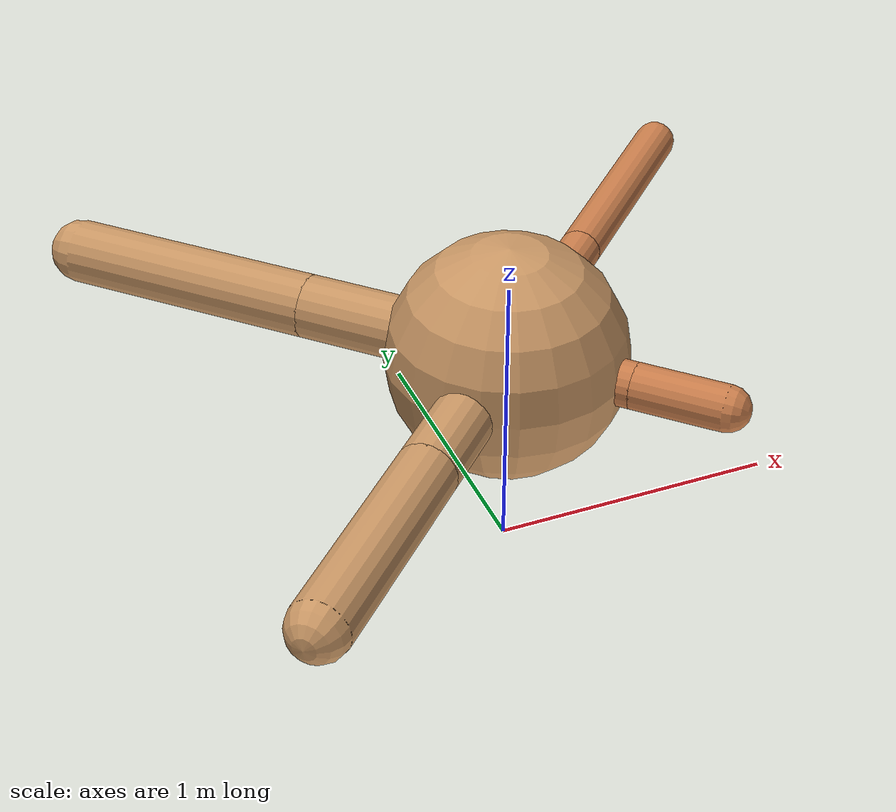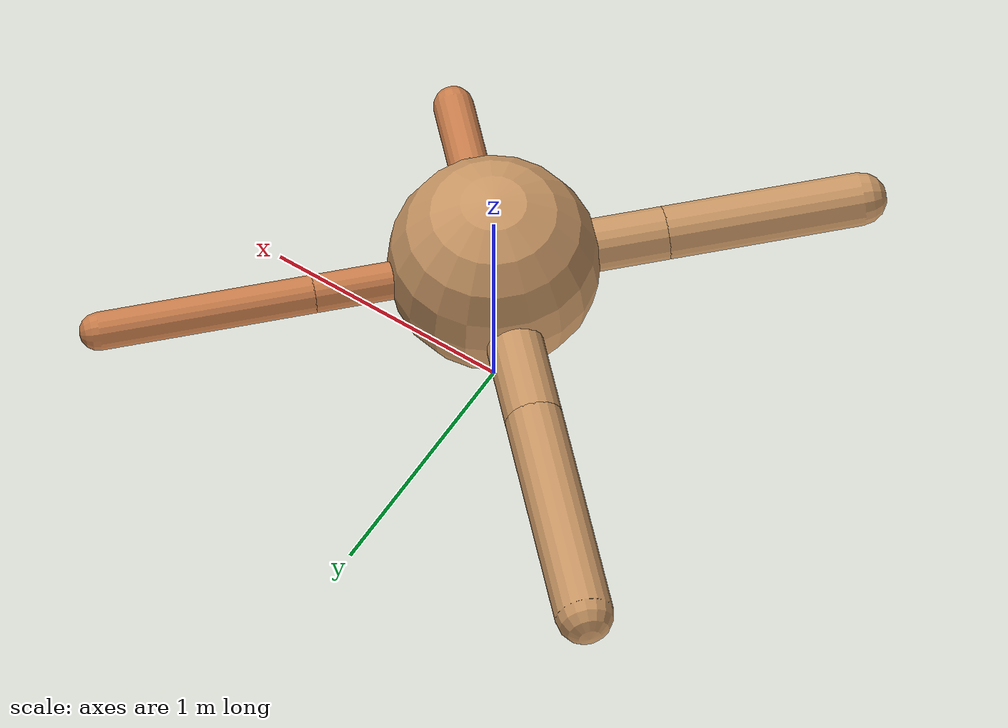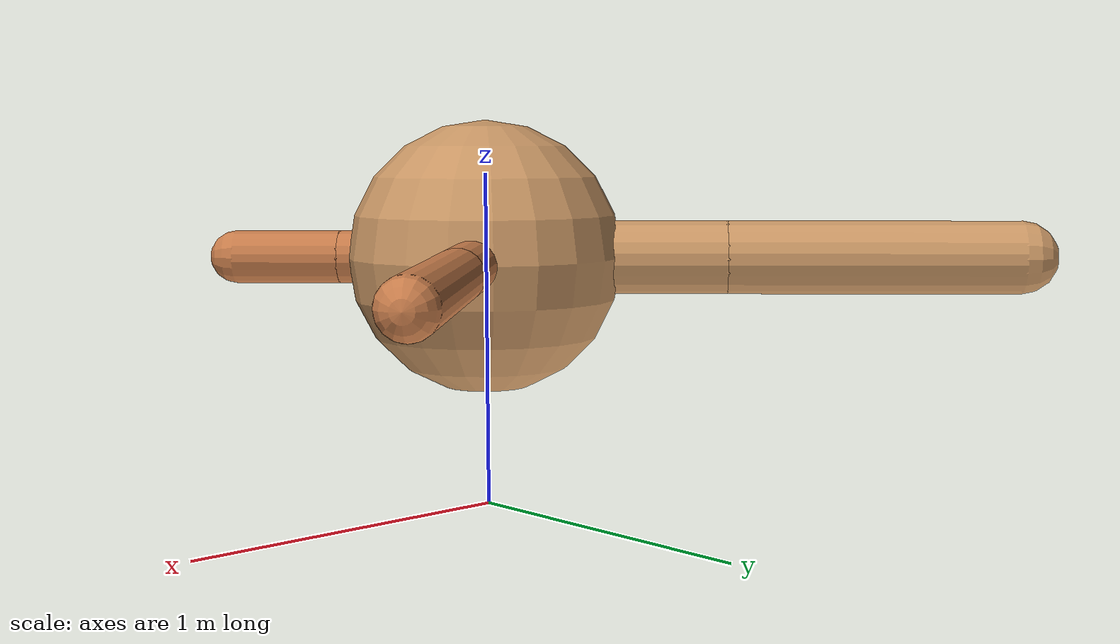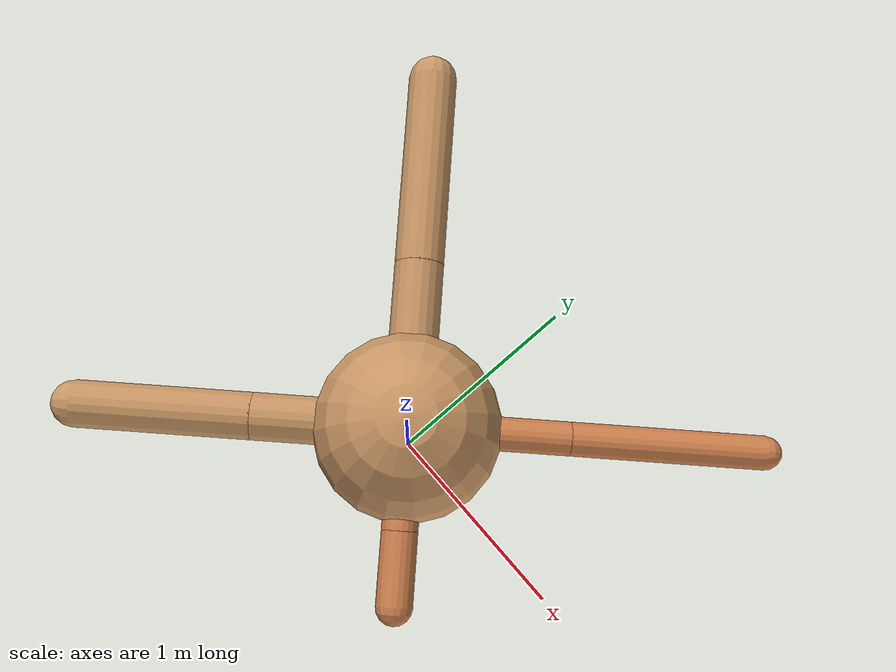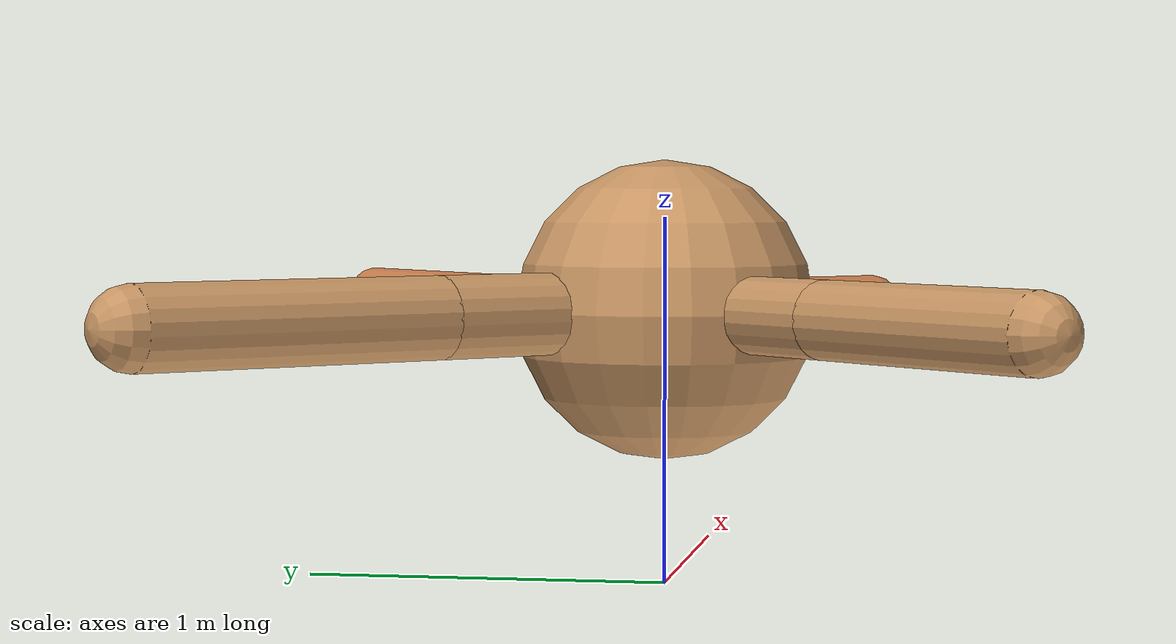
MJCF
<?xml version="1.0" ?>
<mujoco model="ant">

	<compiler angle="degree" coordinate="local" inertiafromgeom="true"/>

	<option integrator="RK4" timestep="0.01"/>

	<custom>

		<numeric data="0.0 0.0 0.55 1.0 0.0 0.0 0.0 0.0 1.0 0.0 -1.0 0.0 -1.0 0.0 1.0" name="init_qpos"/>

	</custom>

	<default>

		<joint armature="1" damping="1" limited="true"/>

		<geom conaffinity="0" condim="3" density="5.0" friction="1.5 0.1 0.1" margin="0.01" rgba="0.8 0.6 0.4 1"/>

	</default>

	<worldbody>

		<body name="torso" pos="0 0 0.75">

			<geom name="torso_geom" pos="0 0 0" size="0.4077205416676448" type="sphere"/>

			<!--joint armature="0" damping="0" limited="false" margin="0.01" name="root" pos="0 0 0" type="free"/-->

			<body name="front_left_leg" pos="0 0 0">

				<geom fromto="0 0 0 0.2 0.2 0" name="aux_1_geom" size="0.07309009450583022" type="capsule" rgba=".8 .5 .3 1"/>

				<body name="aux_1" pos="0.2 0.2 0">

					<joint axis="0 0 1" name="hip_1" pos="0.0 0.0 0.0" range="-40 40" type="hinge"/>

					<geom fromto="0 0 0 0.2914391622375753 0.2914391622375753 0" name="left_leg_geom" size="0.07309009450583022" type="capsule" rgba=".8 .5 .3 1"/>

					<body pos="0.2914391622375753 0.2914391622375753 0" name="front_left_foot">

						<joint axis="-1 1 0" name="ankle_1" pos="0.0 0.0 0.0" range="30 100" type="hinge"/>

						<geom fromto="0 0 0 0.5828783244751506 0.5828783244751506 0" name="left_ankle_geom" size="0.07309009450583022" type="capsule" rgba=".8 .5 .3 1"/>

					</body>

				</body>

			</body>

			<body name="front_right_leg" pos="0 0 0">

				<geom fromto="0 0 0 -0.2 0.2 0" name="aux_2_geom" size="0.10948392804807597" type="capsule"/>

				<body name="aux_2" pos="-0.2 0.2 0">

					<joint axis="0 0 1" name="hip_2" pos="0.0 0.0 0.0" range="-40 40" type="hinge"/>

					<geom fromto="0 0 0 -0.30977365067763984 0.30977365067763984 0" name="right_leg_geom" size="0.10948392804807597" type="capsule"/>

					<body pos="-0.30977365067763984 0.30977365067763984 0" name="front_right_foot">

						<joint axis="1 1 0" name="ankle_2" pos="0.0 0.0 0.0" range="-100 -30" type="hinge"/>

						<geom fromto="0 0 0 -0.6195473013552797 0.6195473013552797 0" name="right_ankle_geom" size="0.10948392804807597" type="capsule"/>

					</body>

				</body>

			</body>

			<body name="left_back_leg" pos="0 0 0">

				<geom fromto="0 0 0 -0.2 -0.2 0" name="aux_3_geom" size="0.10273031364462705" type="capsule"/>

				<body name="aux_3" pos="-0.2 -0.2 0">

					<joint axis="0 0 1" name="hip_3" pos="0.0 0.0 0.0" range="-40 40" type="hinge"/>

					<geom fromto="0 0 0 -0.26985898406422043 -0.26985898406422043 0" name="back_leg_geom" size="0.10273031364462705" type="capsule"/>

					<body pos="-0.26985898406422043 -0.26985898406422043 0" name="left_back_foot">

						<joint axis="-1 1 0" name="ankle_3" pos="0.0 0.0 0.0" range="-100 -30" type="hinge"/>

						<geom fromto="0 0 0 -0.5397179681284409 -0.5397179681284409 0" name="third_ankle_geom" size="0.10273031364462705" type="capsule"/>

					</body>

				</body>

			</body>

			<body name="right_back_leg" pos="0 0 0">

				<geom fromto="0 0 0 0.2 -0.2 0" name="aux_4_geom" size="0.07854646495086087" type="capsule" rgba=".8 .5 .3 1"/>

				<body name="aux_4" pos="0.2 -0.2 0">

					<joint axis="0 0 1" name="hip_4" pos="0.0 0.0 0.0" range="-40 40" type="hinge"/>

					<geom fromto="0 0 0 0.10952312205540826 -0.10952312205540826 0" name="rightback_leg_geom" size="0.07854646495086087" type="capsule" rgba=".8 .5 .3 1"/>

					<body pos="0.10952312205540826 -0.10952312205540826 0" name="right_back_foot">

						<joint axis="1 1 0" name="ankle_4" pos="0.0 0.0 0.0" range="30 100" type="hinge"/>

						<geom fromto="0 0 0 0.21904624411081652 -0.21904624411081652 0" name="fourth_ankle_geom" size="0.07854646495086087" type="capsule" rgba=".8 .5 .3 1"/>

					</body>

				</body>

			</body>

		</body>

	</worldbody>

	<actuator>

		<motor ctrllimited="true" ctrlrange="-1.0 1.0" joint="hip_4" gear="150"/>

		<motor ctrllimited="true" ctrlrange="-1.0 1.0" joint="ankle_4" gear="150"/>

		<motor ctrllimited="true" ctrlrange="-1.0 1.0" joint="hip_1" gear="150"/>

		<motor ctrllimited="true" ctrlrange="-1.0 1.0" joint="ankle_1" gear="150"/>

		<motor ctrllimited="true" ctrlrange="-1.0 1.0" joint="hip_2" gear="150"/>

		<motor ctrllimited="true" ctrlrange="-1.0 1.0" joint="ankle_2" gear="150"/>

		<motor ctrllimited="true" ctrlrange="-1.0 1.0" joint="hip_3" gear="150"/>

		<motor ctrllimited="true" ctrlrange="-1.0 1.0" joint="ankle_3" gear="150"/>

	</actuator>

</mujoco>
